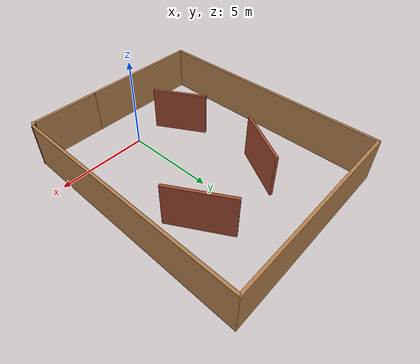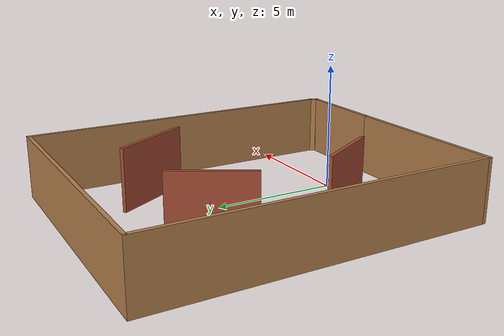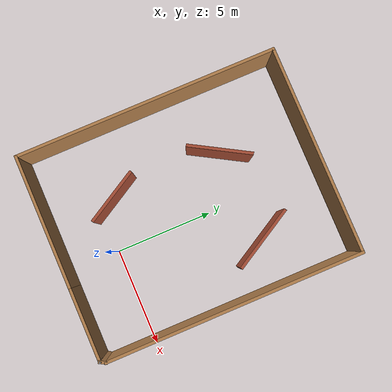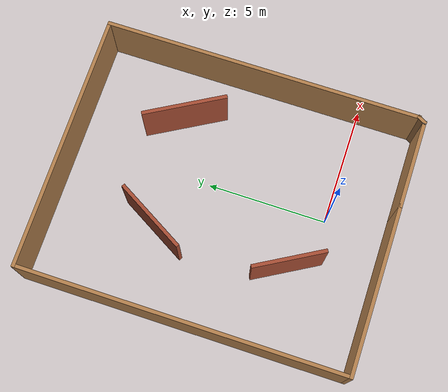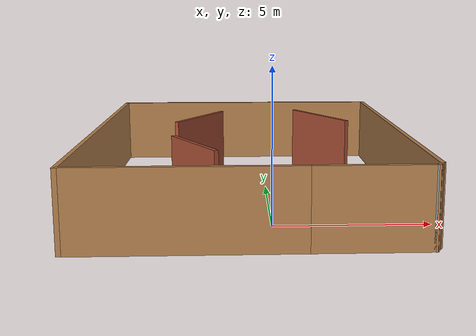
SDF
<?xml version='1.0'?>
<sdf version='1.7'>
  <model name='room'>
    <pose>-0.666051 4.13105 0 0 -0 0</pose>
    <link name='Wall_1'>
      <collision name='Wall_1_Collision'>
        <geometry>
          <box>
            <size>7 0.15 2.5</size>
          </box>
        </geometry>
        <pose>0 0 1.25 0 -0 0</pose>
      </collision>
      <visual name='Wall_1_Visual'>
        <pose>0 0 1.25 0 -0 0</pose>
        <geometry>
          <box>
            <size>7 0.15 2.5</size>
          </box>
        </geometry>
        <material>
          <script>
            <uri>file://media/materials/scripts/gazebo.material</uri>
            <name>Gazebo/Wood</name>
          </script>
          <ambient>1 1 1 1</ambient>
        </material>
        <meta>
          <layer>0</layer>
        </meta>
      </visual>
      <pose>-1.88895 -6.66105 0 0 -0 3.14159</pose>
    </link>
    <link name='Wall_10'>
      <collision name='Wall_10_Collision'>
        <geometry>
          <box>
            <size>0.441548 0.15 2.5</size>
          </box>
        </geometry>
        <pose>0 0 1.25 0 -0 0</pose>
      </collision>
      <visual name='Wall_10_Visual'>
        <pose>0 0 1.25 0 -0 0</pose>
        <geometry>
          <box>
            <size>0.441548 0.15 2.5</size>
          </box>
        </geometry>
        <material>
          <script>
            <uri>file://media/materials/scripts/gazebo.material</uri>
            <name>Gazebo/Wood</name>
          </script>
          <ambient>1 1 1 1</ambient>
        </material>
        <meta>
          <layer>0</layer>
        </meta>
      </visual>
      <pose>5.21105 -6.53605 0 0 -0 -2.11122</pose>
    </link>
    <link name='Wall_12'>
      <collision name='Wall_12_Collision'>
        <geometry>
          <box>
            <size>3.25 0.15 2.5</size>
          </box>
        </geometry>
        <pose>0 0 1.25 0 -0 0</pose>
      </collision>
      <visual name='Wall_12_Visual'>
        <pose>0 0 1.25 0 -0 0</pose>
        <geometry>
          <box>
            <size>3.25 0.15 2.5</size>
          </box>
        </geometry>
        <material>
          <script>
            <uri>file://media/materials/scripts/gazebo.material</uri>
            <name>Gazebo/Bricks</name>
          </script>
          <ambient>1 1 1 1</ambient>
        </material>
        <meta>
          <layer>0</layer>
        </meta>
      </visual>
      <pose>-1.84613 2.40882 0 0 -0 -2.0944</pose>
    </link>
    <link name='Wall_14'>
      <collision name='Wall_14_Collision'>
        <geometry>
          <box>
            <size>3.5 0.15 2.5</size>
          </box>
        </geometry>
        <pose>0 0 1.25 0 -0 0</pose>
      </collision>
      <visual name='Wall_14_Visual'>
        <pose>0 0 1.25 0 -0 0</pose>
        <geometry>
          <box>
            <size>3.5 0.15 2.5</size>
          </box>
        </geometry>
        <material>
          <script>
            <uri>file://media/materials/scripts/gazebo.material</uri>
            <name>Gazebo/Bricks</name>
          </script>
          <ambient>1 1 1 1</ambient>
        </material>
        <meta>
          <layer>0</layer>
        </meta>
      </visual>
      <pose>2.87393 2.62768 0 0 -0 -1.0472</pose>
    </link>
    <link name='Wall_16'>
      <collision name='Wall_16_Collision'>
        <geometry>
          <box>
            <size>3 0.15 2.5</size>
          </box>
        </geometry>
        <pose>0 0 1.25 0 -0 0</pose>
      </collision>
      <visual name='Wall_16_Visual'>
        <pose>0 0 1.25 0 -0 0</pose>
        <geometry>
          <box>
            <size>3 0.15 2.5</size>
          </box>
        </geometry>
        <material>
          <script>
            <uri>file://media/materials/scripts/gazebo.material</uri>
            <name>Gazebo/Bricks</name>
          </script>
          <ambient>1 1 1 1</ambient>
        </material>
        <meta>
          <layer>0</layer>
        </meta>
      </visual>
      <pose>-1.78363 -3.19253 0 0 -0 2.0944</pose>
    </link>
    <link name='Wall_2'>
      <collision name='Wall_2_Collision'>
        <geometry>
          <box>
            <size>13.5 0.15 2.5</size>
          </box>
        </geometry>
        <pose>0 0 1.25 0 -0 0</pose>
      </collision>
      <visual name='Wall_2_Visual'>
        <pose>0 0 1.25 0 -0 0</pose>
        <geometry>
          <box>
            <size>13.5 0.15 2.5</size>
          </box>
        </geometry>
        <material>
          <script>
            <uri>file://media/materials/scripts/gazebo.material</uri>
            <name>Gazebo/Wood</name>
          </script>
          <ambient>1 1 1 1</ambient>
        </material>
        <meta>
          <layer>0</layer>
        </meta>
      </visual>
      <pose>-5.31395 0.013949 0 0 -0 1.5708</pose>
    </link>
    <link name='Wall_3'>
      <collision name='Wall_3_Collision'>
        <geometry>
          <box>
            <size>10.75 0.15 2.5</size>
          </box>
        </geometry>
        <pose>0 0 1.25 0 -0 0</pose>
      </collision>
      <visual name='Wall_3_Visual'>
        <pose>0 0 1.25 0 -0 0</pose>
        <geometry>
          <box>
            <size>10.75 0.15 2.5</size>
          </box>
        </geometry>
        <material>
          <script>
            <uri>file://media/materials/scripts/gazebo.material</uri>
            <name>Gazebo/Wood</name>
          </script>
          <ambient>1 1 1 1</ambient>
        </material>
        <meta>
          <layer>0</layer>
        </meta>
      </visual>
      <pose>-0.013949 6.68895 0 0 -0 0</pose>
    </link>
    <link name='Wall_4'>
      <collision name='Wall_4_Collision'>
        <geometry>
          <box>
            <size>13.25 0.15 2.5</size>
          </box>
        </geometry>
        <pose>0 0 1.25 0 -0 0</pose>
      </collision>
      <visual name='Wall_4_Visual'>
        <pose>0 0 1.25 0 -0 0</pose>
        <geometry>
          <box>
            <size>13.25 0.15 2.5</size>
          </box>
        </geometry>
        <material>
          <script>
            <uri>file://media/materials/scripts/gazebo.material</uri>
            <name>Gazebo/Wood</name>
          </script>
          <ambient>1 1 1 1</ambient>
        </material>
        <meta>
          <layer>0</layer>
        </meta>
      </visual>
      <pose>5.28605 0.138949 0 0 -0 -1.5708</pose>
    </link>
    <link name='Wall_6'>
      <collision name='Wall_6_Collision'>
        <geometry>
          <box>
            <size>3.75 0.15 2.5</size>
          </box>
        </geometry>
        <pose>0 0 1.25 0 -0 0</pose>
      </collision>
      <visual name='Wall_6_Visual'>
        <pose>0 0 1.25 0 -0 0</pose>
        <geometry>
          <box>
            <size>3.75 0.15 2.5</size>
          </box>
        </geometry>
        <material>
          <script>
            <uri>file://media/materials/scripts/gazebo.material</uri>
            <name>Gazebo/Wood</name>
          </script>
          <ambient>1 1 1 1</ambient>
        </material>
        <meta>
          <layer>0</layer>
        </meta>
      </visual>
      <pose>3.33605 -6.66105 0 0 -0 0</pose>
    </link>
    <link name='Wall_8'>
      <collision name='Wall_8_Collision'>
        <geometry>
          <box>
            <size>0.15 0.15 2.5</size>
          </box>
        </geometry>
        <pose>0 0 1.25 0 -0 0</pose>
      </collision>
      <visual name='Wall_8_Visual'>
        <pose>0 0 1.25 0 -0 0</pose>
        <geometry>
          <box>
            <size>0.15 0.15 2.5</size>
          </box>
        </geometry>
        <material>
          <script>
            <uri>file://media/materials/scripts/gazebo.material</uri>
            <name>Gazebo/Grey</name>
          </script>
          <ambient>1 1 1 1</ambient>
        </material>
        <meta>
          <layer>0</layer>
        </meta>
      </visual>
      <pose>5.13605 -6.66105 0 0 -0 0</pose>
    </link>
    <static>1</static>
  </model>
</sdf>
